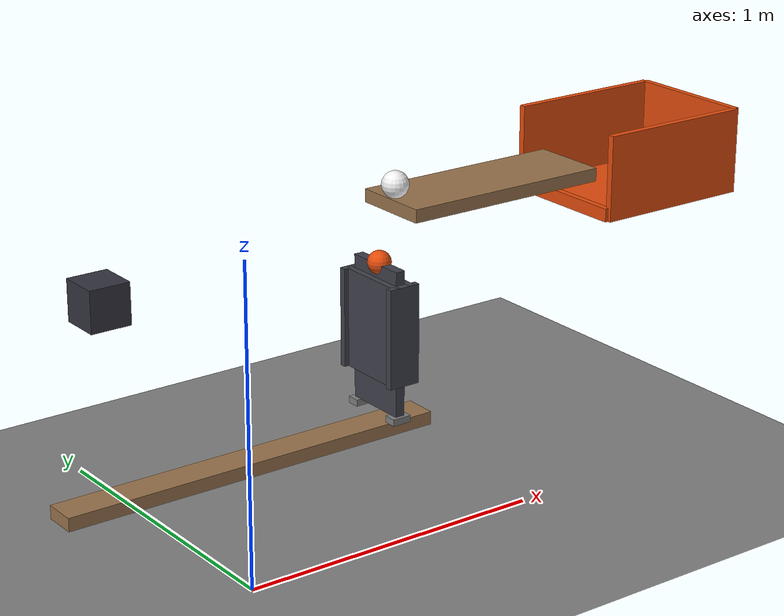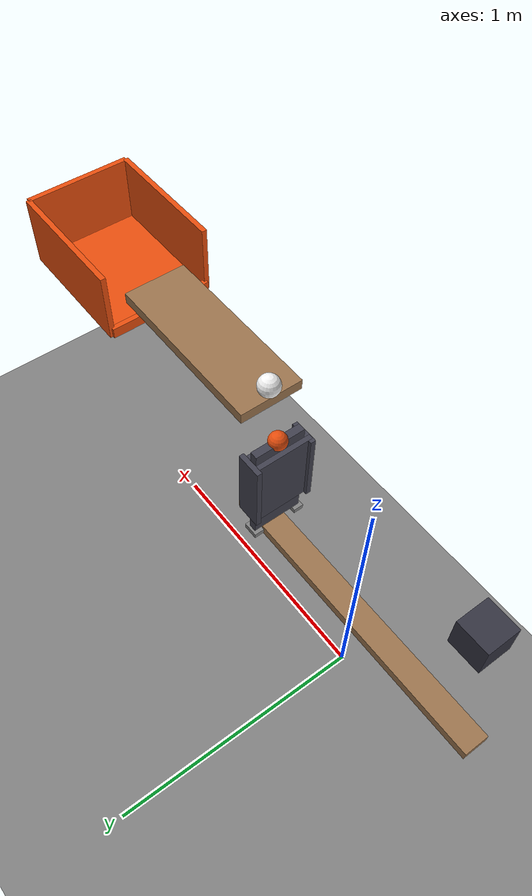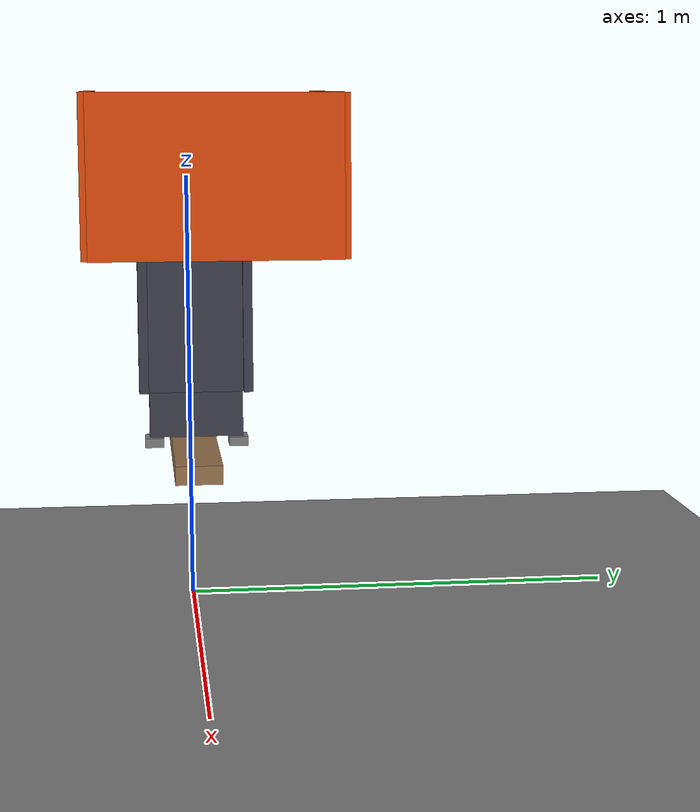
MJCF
<mujoco model="falling_weight_and_guided_lift">
  <compiler angle="radian"/>
  <option timestep="0.002"/>
  <worldbody>
    <geom name="floor" type="plane" size="5 5 0.1" friction="0.8 0.005 0.002"/>
    <body name="lever" pos="0 0 0.4">
      <joint name="lever_hinge" type="hinge" pos="0 0 0" axis="0 1 0" limited="true" range="-0.20944 0" damping="0.02"/>
      <geom name="lever" type="box" pos="0 0 0" size="0.6 0.05 0.02" mass="0.3" friction="1 0.005 0.0001" solref="0.01 1" rgba="0.6 0.45 0.3 1"/>
    </body>
    <body name="weight" pos="-0.45 0 0.98">
      <freejoint/>
      <geom name="weight" type="box" pos="0 0 0" size="0.06 0.06 0.06" mass="2" friction="1 0.005 0.0001" solref="0.01 1" rgba="0.2 0.2 0.25 1"/>
    </body>
    <body name="left lift shoulder">
      <geom name="left lift shoulder" type="box" pos="0.45 0.09 0.45" size="0.03 0.02 0.01" friction="0 0 0" solref="0.01 1"/>
    </body>
    <body name="right lift shoulder">
      <geom name="right lift shoulder" type="box" pos="0.45 -0.09 0.45" size="0.03 0.02 0.01" friction="0 0 0" solref="0.01 1"/>
    </body>
    <body name="near lift guide">
      <geom name="near lift guide" type="box" pos="0.424 0 0.71" size="0.01 0.12 0.15" friction="0 0 0" solref="0.01 1" rgba="0.25 0.25 0.3 1"/>
    </body>
    <body name="far lift guide">
      <geom name="far lift guide" type="box" pos="0.476 0 0.71" size="0.01 0.12 0.15" friction="0 0 0" solref="0.01 1" rgba="0.25 0.25 0.3 1"/>
    </body>
    <body name="left lift guide">
      <geom name="left lift guide" type="box" pos="0.45 0.111 0.71" size="0.05 0.01 0.15" friction="0 0 0" solref="0.01 1" rgba="0.25 0.25 0.3 1"/>
    </body>
    <body name="right lift guide">
      <geom name="right lift guide" type="box" pos="0.45 -0.111 0.71" size="0.05 0.01 0.15" friction="0 0 0" solref="0.01 1" rgba="0.25 0.25 0.3 1"/>
    </body>
    <body name="lift" pos="0.45 0 0.9">
      <freejoint/>
      <geom name="lift" type="sphere" pos="0 0 0" size="0.035" mass="0.025" friction="0.2 0 0" solref="0.01 1" rgba="0.9 0.3 0.05 1"/>
      <geom name="lift shank" type="box" pos="0 0 -0.22" size="0.015 0.1 0.22" mass="0.275" friction="0 0 0" solref="0.01 1" rgba="0.25 0.25 0.3 1"/>
    </body>
    <body name="bridge">
      <geom name="bridge" type="box" pos="0.819 0 1.06" size="0.331 0.12 0.02" friction="0.6 0.001 0.0003" solref="0.01 1" rgba="0.6 0.45 0.3 1"/>
    </body>
    <body name="cup">
      <geom name="cup_base" type="box" pos="1.38 0 0.95" size="0.25 0.2 0.01" friction="1 0.02 0.02" solref="0.01 1" rgba="0.9 0.3 0.05 1"/>
      <geom name="cup_near_wall" type="box" pos="1.13 0 0.96" size="0.01 0.2 0.02" friction="1 0.02 0.02" solref="0.01 1" rgba="0.9 0.3 0.05 1"/>
      <geom name="cup_far_wall" type="box" pos="1.63 0 1.07" size="0.01 0.2 0.13" friction="1 0.02 0.02" solref="0.01 1" rgba="0.9 0.3 0.05 1"/>
      <geom name="cup_left_wall" type="box" pos="1.38 0.2 1.07" size="0.25 0.01 0.13" friction="1 0.02 0.02" solref="0.01 1" rgba="0.9 0.3 0.05 1"/>
      <geom name="cup_right_wall" type="box" pos="1.38 -0.2 1.07" size="0.25 0.01 0.13" friction="1 0.02 0.02" solref="0.01 1" rgba="0.9 0.3 0.05 1"/>
    </body>
    <body name="ball" pos="0.505 0 1.12">
      <freejoint/>
      <geom name="ball" type="sphere" pos="0 0 0" size="0.04" mass="0.1" condim="6" friction="0.6 0.001 0.0003" solref="0.01 1" rgba="0.95 0.95 0.95 1"/>
    </body>
  </worldbody>
  <keyframe>
    <key name="start" qpos="0 -0.45 0 0.98 1 0 0 0 0.45 0 0.9 1 0 0 0 0.505 0 1.12 1 0 0 0" qvel="0 0 0 0 0 0 0 0 0 0 0 0 0 0 0 0 0 0 0"/>
  </keyframe>
</mujoco>
